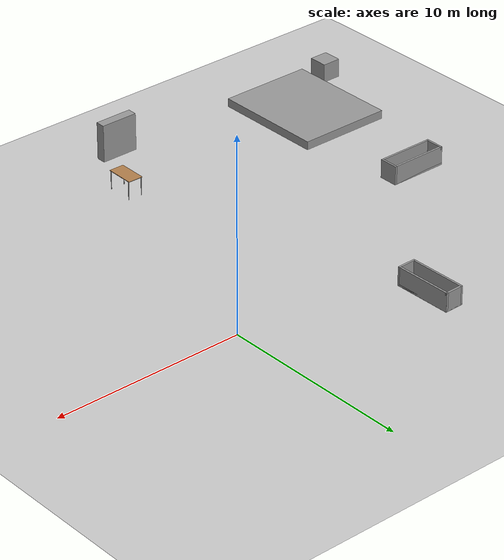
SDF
<sdf version="1.6">
 <world name="default">
  <model name="ground_plane">
   <static>1</static>
   <link name="link">
    <collision name="collision">
     <geometry><plane><normal>0 0 1</normal><size>100 100</size></plane></geometry>
     <surface>
      <contact><collide_bitmask>65535</collide_bitmask></contact>
      <friction><ode><mu>100</mu><mu2>50</mu2></ode></friction>
     </surface>
    </collision>
    <visual name="visual">
     <cast_shadows>0</cast_shadows>
     <geometry><plane><normal>0 0 1</normal><size>100 100</size></plane></geometry>
     <material>
      <script><uri>file://media/materials/scripts/gazebo.material</uri><name>Gazebo/Grey</name></script>
     </material>
    </visual>
   </link>
  </model>
  <model name="bathtub">
   <link name="link_4">
    <pose>-0.02 0 -0.36 0 -0 0</pose>
    <inertial>
     <mass>1</mass>
     <inertia>
      <ixx>0.166667</ixx>
      <ixy>0</ixy>
      <ixz>0</ixz>
      <iyy>0.166667</iyy>
      <iyz>0</iyz>
      <izz>0.166667</izz>
     </inertia>
    </inertial>
    <visual name="visual">
     <geometry><box><size>3 1 0.1</size></box></geometry>
     <material>
      <lighting>1</lighting>
      <script><uri>file://media/materials/scripts/gazebo.material</uri><name>Gazebo/Grey</name></script>
      <shader type="pixel"><normal_map>__default__</normal_map></shader>
      <ambient>0.3 0.3 0.3 1</ambient>
      <diffuse>0.7 0.7 0.7 1</diffuse>
      <specular>0.01 0.01 0.01 1</specular>
      <emissive>0 0 0 1</emissive>
     </material>
    </visual>
    <collision name="collision">
     <geometry><box><size>3 1 0.1</size></box></geometry>
     <surface>
      <friction>
       <ode><mu>1</mu><mu2>1</mu2><fdir1>0 0 0</fdir1><slip1>0</slip1><slip2>0</slip2></ode>
       <torsional>
        <coefficient>1</coefficient>
        <patch_radius>0</patch_radius>
        <surface_radius>0</surface_radius>
        <use_patch_radius>1</use_patch_radius>
        <ode><slip>0</slip></ode>
       </torsional>
      </friction>
      <bounce><restitution_coefficient>0</restitution_coefficient><threshold>1e+06</threshold></bounce>
      <contact>
       <collide_without_contact>0</collide_without_contact>
       <collide_without_contact_bitmask>1</collide_without_contact_bitmask>
       <collide_bitmask>1</collide_bitmask>
       <ode>
        <soft_cfm>0</soft_cfm>
        <soft_erp>0.2</soft_erp>
        <kp>1e+13</kp>
        <kd>1</kd>
        <max_vel>0.01</max_vel>
        <min_depth>0</min_depth>
       </ode>
       <bullet>
        <split_impulse>1</split_impulse>
        <split_impulse_penetration_threshold>-0.01</split_impulse_penetration_threshold>
        <soft_cfm>0</soft_cfm>
        <soft_erp>0.2</soft_erp>
        <kp>1e+13</kp>
        <kd>1</kd>
       </bullet>
      </contact>
     </surface>
    </collision>
   </link>
   <link name="link_5">
    <pose>-0.02 -0.45 0.09 0 -0 0</pose>
    <inertial>
     <mass>1</mass>
     <inertia>
      <ixx>0.166667</ixx>
      <ixy>0</ixy>
      <ixz>0</ixz>
      <iyy>0.166667</iyy>
      <iyz>0</iyz>
      <izz>0.166667</izz>
     </inertia>
    </inertial>
    <visual name="visual">
     <geometry><box><size>3 0.1 1</size></box></geometry>
     <material>
      <lighting>1</lighting>
      <script><uri>file://media/materials/scripts/gazebo.material</uri><name>Gazebo/Grey</name></script>
      <shader type="pixel"><normal_map>__default__</normal_map></shader>
      <ambient>0.3 0.3 0.3 1</ambient>
      <diffuse>0.7 0.7 0.7 1</diffuse>
      <specular>0.01 0.01 0.01 1</specular>
      <emissive>0 0 0 1</emissive>
     </material>
    </visual>
    <collision name="collision">
     <geometry><box><size>3 0.1 1</size></box></geometry>
     <surface>
      <friction>
       <ode><mu>1</mu><mu2>1</mu2><fdir1>0 0 0</fdir1><slip1>0</slip1><slip2>0</slip2></ode>
       <torsional>
        <coefficient>1</coefficient>
        <patch_radius>0</patch_radius>
        <surface_radius>0</surface_radius>
        <use_patch_radius>1</use_patch_radius>
        <ode><slip>0</slip></ode>
       </torsional>
      </friction>
      <bounce><restitution_coefficient>0</restitution_coefficient><threshold>1e+06</threshold></bounce>
      <contact>
       <collide_without_contact>0</collide_without_contact>
       <collide_without_contact_bitmask>1</collide_without_contact_bitmask>
       <collide_bitmask>1</collide_bitmask>
       <ode>
        <soft_cfm>0</soft_cfm>
        <soft_erp>0.2</soft_erp>
        <kp>1e+13</kp>
        <kd>1</kd>
        <max_vel>0.01</max_vel>
        <min_depth>0</min_depth>
       </ode>
       <bullet>
        <split_impulse>1</split_impulse>
        <split_impulse_penetration_threshold>-0.01</split_impulse_penetration_threshold>
        <soft_cfm>0</soft_cfm>
        <soft_erp>0.2</soft_erp>
        <kp>1e+13</kp>
        <kd>1</kd>
       </bullet>
      </contact>
     </surface>
    </collision>
   </link>
   <link name="link_5_clone">
    <pose>-0.02 0.45 0.09 0 -0 0</pose>
    <inertial>
     <mass>1</mass>
     <inertia>
      <ixx>0.166667</ixx>
      <ixy>0</ixy>
      <ixz>0</ixz>
      <iyy>0.166667</iyy>
      <iyz>0</iyz>
      <izz>0.166667</izz>
     </inertia>
    </inertial>
    <visual name="visual">
     <geometry><box><size>3 0.1 1</size></box></geometry>
     <material>
      <lighting>1</lighting>
      <script><uri>file://media/materials/scripts/gazebo.material</uri><name>Gazebo/Grey</name></script>
      <shader type="pixel"><normal_map>__default__</normal_map></shader>
      <ambient>0.3 0.3 0.3 1</ambient>
      <diffuse>0.7 0.7 0.7 1</diffuse>
      <specular>0.01 0.01 0.01 1</specular>
      <emissive>0 0 0 1</emissive>
     </material>
    </visual>
    <collision name="collision">
     <geometry><box><size>3 0.1 1</size></box></geometry>
     <surface>
      <friction>
       <ode><mu>1</mu><mu2>1</mu2><fdir1>0 0 0</fdir1><slip1>0</slip1><slip2>0</slip2></ode>
       <torsional>
        <coefficient>1</coefficient>
        <patch_radius>0</patch_radius>
        <surface_radius>0</surface_radius>
        <use_patch_radius>1</use_patch_radius>
        <ode><slip>0</slip></ode>
       </torsional>
      </friction>
      <bounce><restitution_coefficient>0</restitution_coefficient><threshold>1e+06</threshold></bounce>
      <contact>
       <collide_without_contact>0</collide_without_contact>
       <collide_without_contact_bitmask>1</collide_without_contact_bitmask>
       <collide_bitmask>1</collide_bitmask>
       <ode>
        <soft_cfm>0</soft_cfm>
        <soft_erp>0.2</soft_erp>
        <kp>1e+13</kp>
        <kd>1</kd>
        <max_vel>0.01</max_vel>
        <min_depth>0</min_depth>
       </ode>
       <bullet>
        <split_impulse>1</split_impulse>
        <split_impulse_penetration_threshold>-0.01</split_impulse_penetration_threshold>
        <soft_cfm>0</soft_cfm>
        <soft_erp>0.2</soft_erp>
        <kp>1e+13</kp>
        <kd>1</kd>
       </bullet>
      </contact>
     </surface>
    </collision>
   </link>
   <link name="link_6">
    <pose>1.53 0 0.09 0 -0 0</pose>
    <inertial>
     <mass>1</mass>
     <inertia>
      <ixx>0.166667</ixx>
      <ixy>0</ixy>
      <ixz>0</ixz>
      <iyy>0.166667</iyy>
      <iyz>0</iyz>
      <izz>0.166667</izz>
     </inertia>
    </inertial>
    <visual name="visual">
     <geometry><box><size>0.1 1 1</size></box></geometry>
     <material>
      <lighting>1</lighting>
      <script><uri>file://media/materials/scripts/gazebo.material</uri><name>Gazebo/Grey</name></script>
      <shader type="pixel"><normal_map>__default__</normal_map></shader>
      <ambient>0.3 0.3 0.3 1</ambient>
      <diffuse>0.7 0.7 0.7 1</diffuse>
      <specular>0.01 0.01 0.01 1</specular>
      <emissive>0 0 0 1</emissive>
     </material>
    </visual>
    <collision name="collision">
     <geometry><box><size>0.1 1 1</size></box></geometry>
     <surface>
      <friction>
       <ode><mu>1</mu><mu2>1</mu2><fdir1>0 0 0</fdir1><slip1>0</slip1><slip2>0</slip2></ode>
       <torsional>
        <coefficient>1</coefficient>
        <patch_radius>0</patch_radius>
        <surface_radius>0</surface_radius>
        <use_patch_radius>1</use_patch_radius>
        <ode><slip>0</slip></ode>
       </torsional>
      </friction>
      <bounce><restitution_coefficient>0</restitution_coefficient><threshold>1e+06</threshold></bounce>
      <contact>
       <collide_without_contact>0</collide_without_contact>
       <collide_without_contact_bitmask>1</collide_without_contact_bitmask>
       <collide_bitmask>1</collide_bitmask>
       <ode>
        <soft_cfm>0</soft_cfm>
        <soft_erp>0.2</soft_erp>
        <kp>1e+13</kp>
        <kd>1</kd>
        <max_vel>0.01</max_vel>
        <min_depth>0</min_depth>
       </ode>
       <bullet>
        <split_impulse>1</split_impulse>
        <split_impulse_penetration_threshold>-0.01</split_impulse_penetration_threshold>
        <soft_cfm>0</soft_cfm>
        <soft_erp>0.2</soft_erp>
        <kp>1e+13</kp>
        <kd>1</kd>
       </bullet>
      </contact>
     </surface>
    </collision>
   </link>
   <link name="link_6_clone">
    <pose>-1.47 0 0.09 0 -0 0</pose>
    <inertial>
     <mass>1</mass>
     <inertia>
      <ixx>0.166667</ixx>
      <ixy>0</ixy>
      <ixz>0</ixz>
      <iyy>0.166667</iyy>
      <iyz>0</iyz>
      <izz>0.166667</izz>
     </inertia>
    </inertial>
    <visual name="visual">
     <geometry><box><size>0.1 1 1</size></box></geometry>
     <material>
      <lighting>1</lighting>
      <script><uri>file://media/materials/scripts/gazebo.material</uri><name>Gazebo/Grey</name></script>
      <shader type="pixel"><normal_map>__default__</normal_map></shader>
      <ambient>0.3 0.3 0.3 1</ambient>
      <diffuse>0.7 0.7 0.7 1</diffuse>
      <specular>0.01 0.01 0.01 1</specular>
      <emissive>0 0 0 1</emissive>
     </material>
    </visual>
    <collision name="collision">
     <geometry><box><size>0.1 1 1</size></box></geometry>
     <surface>
      <friction>
       <ode><mu>1</mu><mu2>1</mu2><fdir1>0 0 0</fdir1><slip1>0</slip1><slip2>0</slip2></ode>
       <torsional>
        <coefficient>1</coefficient>
        <patch_radius>0</patch_radius>
        <surface_radius>0</surface_radius>
        <use_patch_radius>1</use_patch_radius>
        <ode><slip>0</slip></ode>
       </torsional>
      </friction>
      <bounce><restitution_coefficient>0</restitution_coefficient><threshold>1e+06</threshold></bounce>
      <contact>
       <collide_without_contact>0</collide_without_contact>
       <collide_without_contact_bitmask>1</collide_without_contact_bitmask>
       <collide_bitmask>1</collide_bitmask>
       <ode>
        <soft_cfm>0</soft_cfm>
        <soft_erp>0.2</soft_erp>
        <kp>1e+13</kp>
        <kd>1</kd>
        <max_vel>0.01</max_vel>
        <min_depth>0</min_depth>
       </ode>
       <bullet>
        <split_impulse>1</split_impulse>
        <split_impulse_penetration_threshold>-0.01</split_impulse_penetration_threshold>
        <soft_cfm>0</soft_cfm>
        <soft_erp>0.2</soft_erp>
        <kp>1e+13</kp>
        <kd>1</kd>
       </bullet>
      </contact>
     </surface>
    </collision>
   </link>
   <joint name="link_4_JOINT_0" type="revolute">
    <parent>link_4</parent>
    <child>link_5_clone</child>
    <axis>
     <xyz>1 0 0</xyz>
     <use_parent_model_frame>0</use_parent_model_frame>
     <limit>
      <lower>-1.79769e+308</lower>
      <upper>1.79769e+308</upper>
      <effort>-1</effort>
      <velocity>-1</velocity>
     </limit>
     <dynamics>
      <spring_reference>0</spring_reference>
      <spring_stiffness>0</spring_stiffness>
      <damping>0</damping>
      <friction>0</friction>
     </dynamics>
    </axis>
    <physics>
     <ode><limit><cfm>0</cfm><erp>0.2</erp></limit><suspension><cfm>0</cfm><erp>0.2</erp></suspension></ode>
    </physics>
   </joint>
   <joint name="link_4_JOINT_1" type="revolute">
    <parent>link_4</parent>
    <child>link_5_clone</child>
    <axis>
     <xyz>1 0 0</xyz>
     <use_parent_model_frame>0</use_parent_model_frame>
     <limit>
      <lower>-1.79769e+308</lower>
      <upper>1.79769e+308</upper>
      <effort>-1</effort>
      <velocity>-1</velocity>
     </limit>
     <dynamics>
      <spring_reference>0</spring_reference>
      <spring_stiffness>0</spring_stiffness>
      <damping>0</damping>
      <friction>0</friction>
     </dynamics>
    </axis>
    <physics>
     <ode><limit><cfm>0</cfm><erp>0.2</erp></limit><suspension><cfm>0</cfm><erp>0.2</erp></suspension></ode>
    </physics>
   </joint>
   <joint name="link_4_JOINT_2" type="revolute">
    <parent>link_4</parent>
    <child>link_5</child>
    <axis>
     <xyz>1 0 0</xyz>
     <use_parent_model_frame>0</use_parent_model_frame>
     <limit>
      <lower>-1.79769e+308</lower>
      <upper>1.79769e+308</upper>
      <effort>-1</effort>
      <velocity>-1</velocity>
     </limit>
     <dynamics>
      <spring_reference>0</spring_reference>
      <spring_stiffness>0</spring_stiffness>
      <damping>0</damping>
      <friction>0</friction>
     </dynamics>
    </axis>
    <physics>
     <ode><limit><cfm>0</cfm><erp>0.2</erp></limit><suspension><cfm>0</cfm><erp>0.2</erp></suspension></ode>
    </physics>
   </joint>
   <joint name="link_4_JOINT_3" type="revolute">
    <parent>link_4</parent>
    <child>link_6_clone</child>
    <axis>
     <xyz>1 0 0</xyz>
     <use_parent_model_frame>0</use_parent_model_frame>
     <limit>
      <lower>-1.79769e+308</lower>
      <upper>1.79769e+308</upper>
      <effort>-1</effort>
      <velocity>-1</velocity>
     </limit>
     <dynamics>
      <spring_reference>0</spring_reference>
      <spring_stiffness>0</spring_stiffness>
      <damping>0</damping>
      <friction>0</friction>
     </dynamics>
    </axis>
    <physics>
     <ode><limit><cfm>0</cfm><erp>0.2</erp></limit><suspension><cfm>0</cfm><erp>0.2</erp></suspension></ode>
    </physics>
   </joint>
   <joint name="link_4_JOINT_4" type="revolute">
    <parent>link_4</parent>
    <child>link_6</child>
    <axis>
     <xyz>1 0 0</xyz>
     <use_parent_model_frame>0</use_parent_model_frame>
     <limit>
      <lower>-1.79769e+308</lower>
      <upper>1.79769e+308</upper>
      <effort>-1</effort>
      <velocity>-1</velocity>
     </limit>
     <dynamics>
      <spring_reference>0</spring_reference>
      <spring_stiffness>0</spring_stiffness>
      <damping>0</damping>
      <friction>0</friction>
     </dynamics>
    </axis>
    <physics>
     <ode><limit><cfm>0</cfm><erp>0.2</erp></limit><suspension><cfm>0</cfm><erp>0.2</erp></suspension></ode>
    </physics>
   </joint>
   <static>0</static>
   <pose>-15.9915 -5.63856 0.41 -3e-06 -0 -0.001299</pose>
  </model>
  <model name="bathtub_clone">
   <link name="link_4">
    <pose>-0.02 0 -0.36 0 -0 0</pose>
    <inertial>
     <mass>1</mass>
     <inertia>
      <ixx>0.166667</ixx>
      <ixy>0</ixy>
      <ixz>0</ixz>
      <iyy>0.166667</iyy>
      <iyz>0</iyz>
      <izz>0.166667</izz>
     </inertia>
    </inertial>
    <visual name="visual">
     <geometry><box><size>3 1 0.1</size></box></geometry>
     <material>
      <lighting>1</lighting>
      <script><uri>file://media/materials/scripts/gazebo.material</uri><name>Gazebo/Grey</name></script>
      <shader type="pixel"><normal_map>__default__</normal_map></shader>
      <ambient>0.3 0.3 0.3 1</ambient>
      <diffuse>0.7 0.7 0.7 1</diffuse>
      <specular>0.01 0.01 0.01 1</specular>
      <emissive>0 0 0 1</emissive>
     </material>
    </visual>
    <collision name="collision">
     <geometry><box><size>3 1 0.1</size></box></geometry>
     <surface>
      <friction>
       <ode><mu>1</mu><mu2>1</mu2><fdir1>0 0 0</fdir1><slip1>0</slip1><slip2>0</slip2></ode>
       <torsional>
        <coefficient>1</coefficient>
        <patch_radius>0</patch_radius>
        <surface_radius>0</surface_radius>
        <use_patch_radius>1</use_patch_radius>
        <ode><slip>0</slip></ode>
       </torsional>
      </friction>
      <bounce><restitution_coefficient>0</restitution_coefficient><threshold>1e+06</threshold></bounce>
      <contact>
       <collide_without_contact>0</collide_without_contact>
       <collide_without_contact_bitmask>1</collide_without_contact_bitmask>
       <collide_bitmask>1</collide_bitmask>
       <ode>
        <soft_cfm>0</soft_cfm>
        <soft_erp>0.2</soft_erp>
        <kp>1e+13</kp>
        <kd>1</kd>
        <max_vel>0.01</max_vel>
        <min_depth>0</min_depth>
       </ode>
       <bullet>
        <split_impulse>1</split_impulse>
        <split_impulse_penetration_threshold>-0.01</split_impulse_penetration_threshold>
        <soft_cfm>0</soft_cfm>
        <soft_erp>0.2</soft_erp>
        <kp>1e+13</kp>
        <kd>1</kd>
       </bullet>
      </contact>
     </surface>
    </collision>
   </link>
   <link name="link_5">
    <pose>-0.02 -0.45 0.09 0 -0 0</pose>
    <inertial>
     <mass>1</mass>
     <inertia>
      <ixx>0.166667</ixx>
      <ixy>0</ixy>
      <ixz>0</ixz>
      <iyy>0.166667</iyy>
      <iyz>0</iyz>
      <izz>0.166667</izz>
     </inertia>
    </inertial>
    <visual name="visual">
     <geometry><box><size>3 0.1 1</size></box></geometry>
     <material>
      <lighting>1</lighting>
      <script><uri>file://media/materials/scripts/gazebo.material</uri><name>Gazebo/Grey</name></script>
      <shader type="pixel"><normal_map>__default__</normal_map></shader>
      <ambient>0.3 0.3 0.3 1</ambient>
      <diffuse>0.7 0.7 0.7 1</diffuse>
      <specular>0.01 0.01 0.01 1</specular>
      <emissive>0 0 0 1</emissive>
     </material>
    </visual>
    <collision name="collision">
     <geometry><box><size>3 0.1 1</size></box></geometry>
     <surface>
      <friction>
       <ode><mu>1</mu><mu2>1</mu2><fdir1>0 0 0</fdir1><slip1>0</slip1><slip2>0</slip2></ode>
       <torsional>
        <coefficient>1</coefficient>
        <patch_radius>0</patch_radius>
        <surface_radius>0</surface_radius>
        <use_patch_radius>1</use_patch_radius>
        <ode><slip>0</slip></ode>
       </torsional>
      </friction>
      <bounce><restitution_coefficient>0</restitution_coefficient><threshold>1e+06</threshold></bounce>
      <contact>
       <collide_without_contact>0</collide_without_contact>
       <collide_without_contact_bitmask>1</collide_without_contact_bitmask>
       <collide_bitmask>1</collide_bitmask>
       <ode>
        <soft_cfm>0</soft_cfm>
        <soft_erp>0.2</soft_erp>
        <kp>1e+13</kp>
        <kd>1</kd>
        <max_vel>0.01</max_vel>
        <min_depth>0</min_depth>
       </ode>
       <bullet>
        <split_impulse>1</split_impulse>
        <split_impulse_penetration_threshold>-0.01</split_impulse_penetration_threshold>
        <soft_cfm>0</soft_cfm>
        <soft_erp>0.2</soft_erp>
        <kp>1e+13</kp>
        <kd>1</kd>
       </bullet>
      </contact>
     </surface>
    </collision>
   </link>
   <link name="link_5_clone">
    <pose>-0.02 0.45 0.09 0 -0 0</pose>
    <inertial>
     <mass>1</mass>
     <inertia>
      <ixx>0.166667</ixx>
      <ixy>0</ixy>
      <ixz>0</ixz>
      <iyy>0.166667</iyy>
      <iyz>0</iyz>
      <izz>0.166667</izz>
     </inertia>
    </inertial>
    <visual name="visual">
     <geometry><box><size>3 0.1 1</size></box></geometry>
     <material>
      <lighting>1</lighting>
      <script><uri>file://media/materials/scripts/gazebo.material</uri><name>Gazebo/Grey</name></script>
      <shader type="pixel"><normal_map>__default__</normal_map></shader>
      <ambient>0.3 0.3 0.3 1</ambient>
      <diffuse>0.7 0.7 0.7 1</diffuse>
      <specular>0.01 0.01 0.01 1</specular>
      <emissive>0 0 0 1</emissive>
     </material>
    </visual>
    <collision name="collision">
     <geometry><box><size>3 0.1 1</size></box></geometry>
     <surface>
      <friction>
       <ode><mu>1</mu><mu2>1</mu2><fdir1>0 0 0</fdir1><slip1>0</slip1><slip2>0</slip2></ode>
       <torsional>
        <coefficient>1</coefficient>
        <patch_radius>0</patch_radius>
        <surface_radius>0</surface_radius>
        <use_patch_radius>1</use_patch_radius>
        <ode><slip>0</slip></ode>
       </torsional>
      </friction>
      <bounce><restitution_coefficient>0</restitution_coefficient><threshold>1e+06</threshold></bounce>
      <contact>
       <collide_without_contact>0</collide_without_contact>
       <collide_without_contact_bitmask>1</collide_without_contact_bitmask>
       <collide_bitmask>1</collide_bitmask>
       <ode>
        <soft_cfm>0</soft_cfm>
        <soft_erp>0.2</soft_erp>
        <kp>1e+13</kp>
        <kd>1</kd>
        <max_vel>0.01</max_vel>
        <min_depth>0</min_depth>
       </ode>
       <bullet>
        <split_impulse>1</split_impulse>
        <split_impulse_penetration_threshold>-0.01</split_impulse_penetration_threshold>
        <soft_cfm>0</soft_cfm>
        <soft_erp>0.2</soft_erp>
        <kp>1e+13</kp>
        <kd>1</kd>
       </bullet>
      </contact>
     </surface>
    </collision>
   </link>
   <link name="link_6">
    <pose>1.53 0 0.09 0 -0 0</pose>
    <inertial>
     <mass>1</mass>
     <inertia>
      <ixx>0.166667</ixx>
      <ixy>0</ixy>
      <ixz>0</ixz>
      <iyy>0.166667</iyy>
      <iyz>0</iyz>
      <izz>0.166667</izz>
     </inertia>
    </inertial>
    <visual name="visual">
     <geometry><box><size>0.1 1 1</size></box></geometry>
     <material>
      <lighting>1</lighting>
      <script><uri>file://media/materials/scripts/gazebo.material</uri><name>Gazebo/Grey</name></script>
      <shader type="pixel"><normal_map>__default__</normal_map></shader>
      <ambient>0.3 0.3 0.3 1</ambient>
      <diffuse>0.7 0.7 0.7 1</diffuse>
      <specular>0.01 0.01 0.01 1</specular>
      <emissive>0 0 0 1</emissive>
     </material>
    </visual>
    <collision name="collision">
     <geometry><box><size>0.1 1 1</size></box></geometry>
     <surface>
      <friction>
       <ode><mu>1</mu><mu2>1</mu2><fdir1>0 0 0</fdir1><slip1>0</slip1><slip2>0</slip2></ode>
       <torsional>
        <coefficient>1</coefficient>
        <patch_radius>0</patch_radius>
        <surface_radius>0</surface_radius>
        <use_patch_radius>1</use_patch_radius>
        <ode><slip>0</slip></ode>
       </torsional>
      </friction>
      <bounce><restitution_coefficient>0</restitution_coefficient><threshold>1e+06</threshold></bounce>
      <contact>
       <collide_without_contact>0</collide_without_contact>
       <collide_without_contact_bitmask>1</collide_without_contact_bitmask>
       <collide_bitmask>1</collide_bitmask>
       <ode>
        <soft_cfm>0</soft_cfm>
        <soft_erp>0.2</soft_erp>
        <kp>1e+13</kp>
        <kd>1</kd>
        <max_vel>0.01</max_vel>
        <min_depth>0</min_depth>
       </ode>
       <bullet>
        <split_impulse>1</split_impulse>
        <split_impulse_penetration_threshold>-0.01</split_impulse_penetration_threshold>
        <soft_cfm>0</soft_cfm>
        <soft_erp>0.2</soft_erp>
        <kp>1e+13</kp>
        <kd>1</kd>
       </bullet>
      </contact>
     </surface>
    </collision>
   </link>
   <link name="link_6_clone">
    <pose>-1.47 0 0.09 0 -0 0</pose>
    <inertial>
     <mass>1</mass>
     <inertia>
      <ixx>0.166667</ixx>
      <ixy>0</ixy>
      <ixz>0</ixz>
      <iyy>0.166667</iyy>
      <iyz>0</iyz>
      <izz>0.166667</izz>
     </inertia>
    </inertial>
    <visual name="visual">
     <geometry><box><size>0.1 1 1</size></box></geometry>
     <material>
      <lighting>1</lighting>
      <script><uri>file://media/materials/scripts/gazebo.material</uri><name>Gazebo/Grey</name></script>
      <shader type="pixel"><normal_map>__default__</normal_map></shader>
      <ambient>0.3 0.3 0.3 1</ambient>
      <diffuse>0.7 0.7 0.7 1</diffuse>
      <specular>0.01 0.01 0.01 1</specular>
      <emissive>0 0 0 1</emissive>
     </material>
    </visual>
    <collision name="collision">
     <geometry><box><size>0.1 1 1</size></box></geometry>
     <surface>
      <friction>
       <ode><mu>1</mu><mu2>1</mu2><fdir1>0 0 0</fdir1><slip1>0</slip1><slip2>0</slip2></ode>
       <torsional>
        <coefficient>1</coefficient>
        <patch_radius>0</patch_radius>
        <surface_radius>0</surface_radius>
        <use_patch_radius>1</use_patch_radius>
        <ode><slip>0</slip></ode>
       </torsional>
      </friction>
      <bounce><restitution_coefficient>0</restitution_coefficient><threshold>1e+06</threshold></bounce>
      <contact>
       <collide_without_contact>0</collide_without_contact>
       <collide_without_contact_bitmask>1</collide_without_contact_bitmask>
       <collide_bitmask>1</collide_bitmask>
       <ode>
        <soft_cfm>0</soft_cfm>
        <soft_erp>0.2</soft_erp>
        <kp>1e+13</kp>
        <kd>1</kd>
        <max_vel>0.01</max_vel>
        <min_depth>0</min_depth>
       </ode>
       <bullet>
        <split_impulse>1</split_impulse>
        <split_impulse_penetration_threshold>-0.01</split_impulse_penetration_threshold>
        <soft_cfm>0</soft_cfm>
        <soft_erp>0.2</soft_erp>
        <kp>1e+13</kp>
        <kd>1</kd>
       </bullet>
      </contact>
     </surface>
    </collision>
   </link>
   <joint name="link_4_JOINT_0" type="revolute">
    <parent>link_4</parent>
    <child>link_5_clone</child>
    <axis>
     <xyz>1 0 0</xyz>
     <use_parent_model_frame>0</use_parent_model_frame>
     <limit>
      <lower>-1.79769e+308</lower>
      <upper>1.79769e+308</upper>
      <effort>-1</effort>
      <velocity>-1</velocity>
     </limit>
     <dynamics>
      <spring_reference>0</spring_reference>
      <spring_stiffness>0</spring_stiffness>
      <damping>0</damping>
      <friction>0</friction>
     </dynamics>
    </axis>
    <physics>
     <ode><limit><cfm>0</cfm><erp>0.2</erp></limit><suspension><cfm>0</cfm><erp>0.2</erp></suspension></ode>
    </physics>
   </joint>
   <joint name="link_4_JOINT_1" type="revolute">
    <parent>link_4</parent>
    <child>link_5_clone</child>
    <axis>
     <xyz>1 0 0</xyz>
     <use_parent_model_frame>0</use_parent_model_frame>
     <limit>
      <lower>-1.79769e+308</lower>
      <upper>1.79769e+308</upper>
      <effort>-1</effort>
      <velocity>-1</velocity>
     </limit>
     <dynamics>
      <spring_reference>0</spring_reference>
      <spring_stiffness>0</spring_stiffness>
      <damping>0</damping>
      <friction>0</friction>
     </dynamics>
    </axis>
    <physics>
     <ode><limit><cfm>0</cfm><erp>0.2</erp></limit><suspension><cfm>0</cfm><erp>0.2</erp></suspension></ode>
    </physics>
   </joint>
   <joint name="link_4_JOINT_2" type="revolute">
    <parent>link_4</parent>
    <child>link_5</child>
    <axis>
     <xyz>1 0 0</xyz>
     <use_parent_model_frame>0</use_parent_model_frame>
     <limit>
      <lower>-1.79769e+308</lower>
      <upper>1.79769e+308</upper>
      <effort>-1</effort>
      <velocity>-1</velocity>
     </limit>
     <dynamics>
      <spring_reference>0</spring_reference>
      <spring_stiffness>0</spring_stiffness>
      <damping>0</damping>
      <friction>0</friction>
     </dynamics>
    </axis>
    <physics>
     <ode><limit><cfm>0</cfm><erp>0.2</erp></limit><suspension><cfm>0</cfm><erp>0.2</erp></suspension></ode>
    </physics>
   </joint>
   <joint name="link_4_JOINT_3" type="revolute">
    <parent>link_4</parent>
    <child>link_6_clone</child>
    <axis>
     <xyz>1 0 0</xyz>
     <use_parent_model_frame>0</use_parent_model_frame>
     <limit>
      <lower>-1.79769e+308</lower>
      <upper>1.79769e+308</upper>
      <effort>-1</effort>
      <velocity>-1</velocity>
     </limit>
     <dynamics>
      <spring_reference>0</spring_reference>
      <spring_stiffness>0</spring_stiffness>
      <damping>0</damping>
      <friction>0</friction>
     </dynamics>
    </axis>
    <physics>
     <ode><limit><cfm>0</cfm><erp>0.2</erp></limit><suspension><cfm>0</cfm><erp>0.2</erp></suspension></ode>
    </physics>
   </joint>
   <joint name="link_4_JOINT_4" type="revolute">
    <parent>link_4</parent>
    <child>link_6</child>
    <axis>
     <xyz>1 0 0</xyz>
     <use_parent_model_frame>0</use_parent_model_frame>
     <limit>
      <lower>-1.79769e+308</lower>
      <upper>1.79769e+308</upper>
      <effort>-1</effort>
      <velocity>-1</velocity>
     </limit>
     <dynamics>
      <spring_reference>0</spring_reference>
      <spring_stiffness>0</spring_stiffness>
      <damping>0</damping>
      <friction>0</friction>
     </dynamics>
    </axis>
    <physics>
     <ode><limit><cfm>0</cfm><erp>0.2</erp></limit><suspension><cfm>0</cfm><erp>0.2</erp></suspension></ode>
    </physics>
   </joint>
   <static>0</static>
   <pose>-8.69956 3.18361 0.41 0 0 -1.55566</pose>
  </model>
  <model name="bedroom1">
   <link name="link_12">
    <pose>5.29621 -1.61388 0.750755 0 -0 0</pose>
    <inertial>
     <mass>1</mass>
     <inertia>
      <ixx>0.166667</ixx>
      <ixy>0</ixy>
      <ixz>0</ixz>
      <iyy>0.166667</iyy>
      <iyz>0</iyz>
      <izz>0.166667</izz>
     </inertia>
    </inertial>
    <visual name="visual">
     <geometry><box><size>2 0.5 2</size></box></geometry>
     <material>
      <lighting>1</lighting>
      <script><uri>file://media/materials/scripts/gazebo.material</uri><name>Gazebo/Grey</name></script>
      <shader type="pixel"><normal_map>__default__</normal_map></shader>
      <ambient>0.3 0.3 0.3 1</ambient>
      <diffuse>0.7 0.7 0.7 1</diffuse>
      <specular>0.01 0.01 0.01 1</specular>
      <emissive>0 0 0 1</emissive>
     </material>
    </visual>
    <collision name="collision">
     <geometry><box><size>2 0.5 2</size></box></geometry>
     <surface>
      <friction>
       <ode><mu>1</mu><mu2>1</mu2><fdir1>0 0 0</fdir1><slip1>0</slip1><slip2>0</slip2></ode>
       <torsional>
        <coefficient>1</coefficient>
        <patch_radius>0</patch_radius>
        <surface_radius>0</surface_radius>
        <use_patch_radius>1</use_patch_radius>
        <ode><slip>0</slip></ode>
       </torsional>
      </friction>
      <bounce><restitution_coefficient>0</restitution_coefficient><threshold>1e+06</threshold></bounce>
      <contact>
       <collide_without_contact>0</collide_without_contact>
       <collide_without_contact_bitmask>1</collide_without_contact_bitmask>
       <collide_bitmask>1</collide_bitmask>
       <ode>
        <soft_cfm>0</soft_cfm>
        <soft_erp>0.2</soft_erp>
        <kp>1e+13</kp>
        <kd>1</kd>
        <max_vel>0.01</max_vel>
        <min_depth>0</min_depth>
       </ode>
       <bullet>
        <split_impulse>1</split_impulse>
        <split_impulse_penetration_threshold>-0.01</split_impulse_penetration_threshold>
        <soft_cfm>0</soft_cfm>
        <soft_erp>0.2</soft_erp>
        <kp>1e+13</kp>
        <kd>1</kd>
       </bullet>
      </contact>
     </surface>
    </collision>
   </link>
   <link name="link_7">
    <pose>-4.56519 1.16033 -0.175 0 -0 0</pose>
    <inertial>
     <mass>1</mass>
     <inertia>
      <ixx>0.166667</ixx>
      <ixy>0</ixy>
      <ixz>0</ixz>
      <iyy>0.166667</iyy>
      <iyz>0</iyz>
      <izz>0.166667</izz>
     </inertia>
    </inertial>
    <visual name="visual">
     <geometry><box><size>5 6 0.7</size></box></geometry>
     <material>
      <lighting>1</lighting>
      <script><uri>file://media/materials/scripts/gazebo.material</uri><name>Gazebo/Grey</name></script>
      <shader type="pixel"><normal_map>__default__</normal_map></shader>
      <ambient>0.3 0.3 0.3 1</ambient>
      <diffuse>0.7 0.7 0.7 1</diffuse>
      <specular>0.01 0.01 0.01 1</specular>
      <emissive>0 0 0 1</emissive>
     </material>
    </visual>
    <collision name="collision">
     <geometry><box><size>5 6 0.7</size></box></geometry>
     <surface>
      <friction>
       <ode><mu>1</mu><mu2>1</mu2><fdir1>0 0 0</fdir1><slip1>0</slip1><slip2>0</slip2></ode>
       <torsional>
        <coefficient>1</coefficient>
        <patch_radius>0</patch_radius>
        <surface_radius>0</surface_radius>
        <use_patch_radius>1</use_patch_radius>
        <ode><slip>0</slip></ode>
       </torsional>
      </friction>
      <bounce><restitution_coefficient>0</restitution_coefficient><threshold>1e+06</threshold></bounce>
      <contact>
       <collide_without_contact>0</collide_without_contact>
       <collide_without_contact_bitmask>1</collide_without_contact_bitmask>
       <collide_bitmask>1</collide_bitmask>
       <ode>
        <soft_cfm>0</soft_cfm>
        <soft_erp>0.2</soft_erp>
        <kp>1e+13</kp>
        <kd>1</kd>
        <max_vel>0.01</max_vel>
        <min_depth>0</min_depth>
       </ode>
       <bullet>
        <split_impulse>1</split_impulse>
        <split_impulse_penetration_threshold>-0.01</split_impulse_penetration_threshold>
        <soft_cfm>0</soft_cfm>
        <soft_erp>0.2</soft_erp>
        <kp>1e+13</kp>
        <kd>1</kd>
       </bullet>
      </contact>
     </surface>
    </collision>
   </link>
   <link name="link_8">
    <pose>-8.00297 -1.1238 0.225 0 -0 0</pose>
    <inertial>
     <mass>1</mass>
     <inertia>
      <ixx>0.166667</ixx>
      <ixy>0</ixy>
      <ixz>0</ixz>
      <iyy>0.166667</iyy>
      <iyz>0</iyz>
      <izz>0.166667</izz>
     </inertia>
    </inertial>
    <visual name="visual">
     <geometry><box><size>1 1 1</size></box></geometry>
     <material>
      <lighting>1</lighting>
      <script><uri>file://media/materials/scripts/gazebo.material</uri><name>Gazebo/Grey</name></script>
      <shader type="pixel"/>
      <ambient>0.3 0.3 0.3 1</ambient>
      <diffuse>0.7 0.7 0.7 1</diffuse>
      <specular>0.01 0.01 0.01 1</specular>
      <emissive>0 0 0 1</emissive>
     </material>
    </visual>
    <collision name="collision">
     <geometry><box><size>1 1 1</size></box></geometry>
     <surface>
      <friction>
       <ode><mu>1</mu><mu2>1</mu2><fdir1>0 0 0</fdir1><slip1>0</slip1><slip2>0</slip2></ode>
       <torsional>
        <coefficient>1</coefficient>
        <patch_radius>0</patch_radius>
        <surface_radius>0</surface_radius>
        <use_patch_radius>1</use_patch_radius>
        <ode><slip>0</slip></ode>
       </torsional>
      </friction>
      <bounce><restitution_coefficient>0</restitution_coefficient><threshold>1e+06</threshold></bounce>
      <contact>
       <collide_without_contact>0</collide_without_contact>
       <collide_without_contact_bitmask>1</collide_without_contact_bitmask>
       <collide_bitmask>1</collide_bitmask>
       <ode>
        <soft_cfm>0</soft_cfm>
        <soft_erp>0.2</soft_erp>
        <kp>1e+13</kp>
        <kd>1</kd>
        <max_vel>0.01</max_vel>
        <min_depth>0</min_depth>
       </ode>
       <bullet>
        <split_impulse>1</split_impulse>
        <split_impulse_penetration_threshold>-0.01</split_impulse_penetration_threshold>
        <soft_cfm>0</soft_cfm>
        <soft_erp>0.2</soft_erp>
        <kp>1e+13</kp>
        <kd>1</kd>
       </bullet>
      </contact>
     </surface>
    </collision>
   </link>
   <model name="table">
    <static>1</static>
    <link name="link">
     <collision name="surface">
      <pose>0 0 1 0 -0 0</pose>
      <geometry><box><size>1.5 0.8 0.03</size></box></geometry>
      <surface><friction><ode><mu>0.6</mu><mu2>0.6</mu2></ode></friction></surface>
     </collision>
     <visual name="visual1">
      <pose>0 0 1 0 -0 0</pose>
      <geometry><box><size>1.5 0.8 0.03</size></box></geometry>
      <material>
       <script><uri>file://media/materials/scripts/gazebo.material</uri><name>Gazebo/Wood</name></script>
      </material>
     </visual>
     <collision name="front_left_leg">
      <pose>0.68 0.38 0.5 0 -0 0</pose>
      <geometry><cylinder><radius>0.02</radius><length>1</length></cylinder></geometry>
     </collision>
     <visual name="front_left_leg">
      <pose>0.68 0.38 0.5 0 -0 0</pose>
      <geometry><cylinder><radius>0.02</radius><length>1</length></cylinder></geometry>
      <material>
       <script><uri>file://media/materials/scripts/gazebo.material</uri><name>Gazebo/Grey</name></script>
      </material>
     </visual>
     <collision name="front_right_leg">
      <pose>0.68 -0.38 0.5 0 -0 0</pose>
      <geometry><cylinder><radius>0.02</radius><length>1</length></cylinder></geometry>
     </collision>
     <visual name="front_right_leg">
      <pose>0.68 -0.38 0.5 0 -0 0</pose>
      <geometry><cylinder><radius>0.02</radius><length>1</length></cylinder></geometry>
      <material>
       <script><uri>file://media/materials/scripts/gazebo.material</uri><name>Gazebo/Grey</name></script>
      </material>
     </visual>
     <collision name="back_right_leg">
      <pose>-0.68 -0.38 0.5 0 -0 0</pose>
      <geometry><cylinder><radius>0.02</radius><length>1</length></cylinder></geometry>
     </collision>
     <visual name="back_right_leg">
      <pose>-0.68 -0.38 0.5 0 -0 0</pose>
      <geometry><cylinder><radius>0.02</radius><length>1</length></cylinder></geometry>
      <material>
       <script><uri>file://media/materials/scripts/gazebo.material</uri><name>Gazebo/Grey</name></script>
      </material>
     </visual>
     <collision name="back_left_leg">
      <pose>-0.68 0.38 0.5 0 -0 0</pose>
      <geometry><cylinder><radius>0.02</radius><length>1</length></cylinder></geometry>
     </collision>
     <visual name="back_left_leg">
      <pose>-0.68 0.38 0.5 0 -0 0</pose>
      <geometry><cylinder><radius>0.02</radius><length>1</length></cylinder></geometry>
      <material>
       <script><uri>file://media/materials/scripts/gazebo.material</uri><name>Gazebo/Grey</name></script>
      </material>
     </visual>
    </link>
    <pose>7.27198 1.57734 -0.275 0 0 -1.58822</pose>
   </model>
   <static>0</static>
   <pose>-11.5362 -14.7034 0.249249 1e-06 1e-06 -2e-06</pose>
  </model>
 </world>
</sdf>
